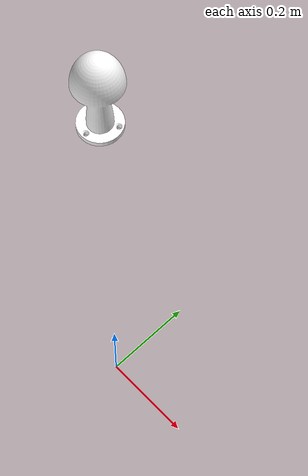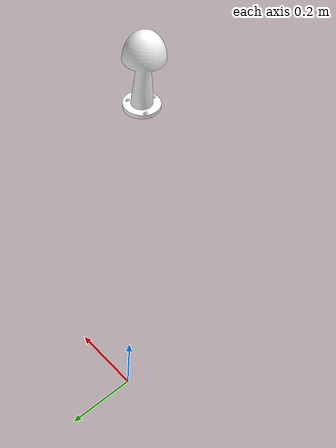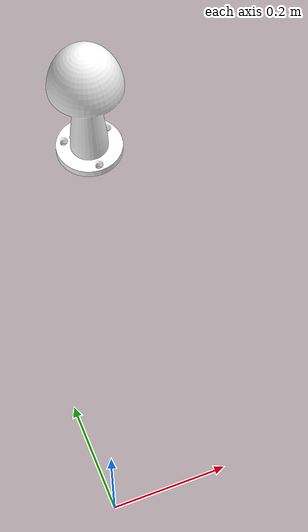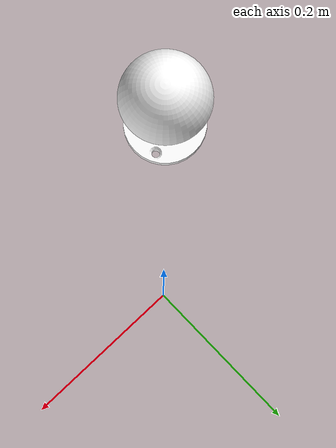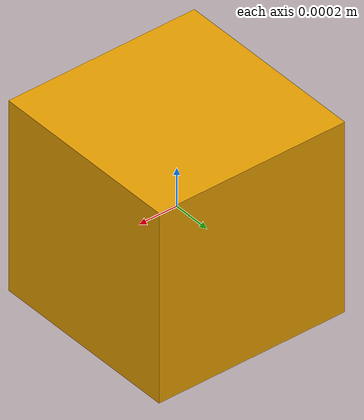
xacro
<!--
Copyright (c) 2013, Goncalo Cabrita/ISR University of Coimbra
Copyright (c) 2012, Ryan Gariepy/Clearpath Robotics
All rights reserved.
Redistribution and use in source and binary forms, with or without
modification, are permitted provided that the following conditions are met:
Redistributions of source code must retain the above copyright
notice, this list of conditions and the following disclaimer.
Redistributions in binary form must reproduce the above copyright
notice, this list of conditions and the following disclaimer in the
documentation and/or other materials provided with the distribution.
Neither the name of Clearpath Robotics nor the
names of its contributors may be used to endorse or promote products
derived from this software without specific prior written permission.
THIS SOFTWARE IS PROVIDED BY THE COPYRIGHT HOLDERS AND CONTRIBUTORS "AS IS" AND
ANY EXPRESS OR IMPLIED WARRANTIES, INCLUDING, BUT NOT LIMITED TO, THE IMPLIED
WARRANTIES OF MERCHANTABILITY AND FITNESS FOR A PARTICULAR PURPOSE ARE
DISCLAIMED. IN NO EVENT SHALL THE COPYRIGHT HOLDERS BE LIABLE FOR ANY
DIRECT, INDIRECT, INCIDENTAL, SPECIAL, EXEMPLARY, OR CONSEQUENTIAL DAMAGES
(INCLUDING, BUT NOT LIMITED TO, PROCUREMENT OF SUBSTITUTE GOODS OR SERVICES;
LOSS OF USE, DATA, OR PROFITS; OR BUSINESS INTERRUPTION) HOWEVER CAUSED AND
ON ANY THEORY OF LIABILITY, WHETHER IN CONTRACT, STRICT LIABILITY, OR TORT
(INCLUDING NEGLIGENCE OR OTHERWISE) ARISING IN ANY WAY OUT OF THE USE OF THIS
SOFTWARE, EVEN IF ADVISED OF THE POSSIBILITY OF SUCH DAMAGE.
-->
<?xml version="1.0"?>

<robot

    xmlns:xi="http://www.w3.org/2001/XInclude"
    xmlns:gazebo="http://playerstage.sourceforge.net/gazebo/xmlschema/#gz"
    xmlns:model="http://playerstage.sourceforge.net/gazebo/xmlschema/#model"
    xmlns:sensor="http://playerstage.sourceforge.net/gazebo/xmlschema/#sensor"
    xmlns:body="http://playerstage.sourceforge.net/gazebo/xmlschema/#body"
    xmlns:geom="http://playerstage.sourceforge.net/gazebo/xmlschema/#geom"
    xmlns:joint="http://playerstage.sourceforge.net/gazebo/xmlschema/#joint"
    xmlns:controller="http://playerstage.sourceforge.net/gazebo/xmlschema/#controller"
    xmlns:interface="http://playerstage.sourceforge.net/gazebo/xmlschema/#interface"
    xmlns:rendering="http://playerstage.sourceforge.net/gazebo/xmlschema/#rendering"
    xmlns:renderable="http://playerstage.sourceforge.net/gazebo/xmlschema/#renderable"
    xmlns:physics="http://playerstage.sourceforge.net/gazebo/xmlschema/#physics"
    xmlns:xacro="http://ros.org/wiki/xacro" name="husky">

    <!-- Included URDF/XACRO Files -->
    <xacro:include filename="$(find hratc2014_framework)/urdf/fsr_husky_parts/gps_antenna.urdf.xacro" />

    <link name="base_footprint">

        <visual>
            <origin xyz="0 0 0" rpy="0 0 0" />
            <geometry>
                <box size="0.001 0.001 0.001" />
            </geometry>
        </visual>
    </link>

    <link name="gps_antenna1">
    			<inertial>
      				<origin xyz="0.035 1.27350000005198E-07 0.084899" rpy="0 0 0" />
      				<mass value="0.28321" />
      				<inertia
        				ixx="0.000632544028273332"
        				ixy="-4.4923388876054E-20"
        				ixz="1.07422508310795E-20"
        				iyy="1.26609361466704E-09"
        				iyz="-0.000632544028277925"
        				izz="-1.26609361462022E-09" />
    			</inertial>
    			<visual>
      				<origin xyz="-0.035 0 0" rpy="1.5708 0 0" />
      				<geometry>
					<mesh filename="package://hratc2014_framework/models/fsr_husky_parts/gps_antenna.stl" />
      				</geometry>
      				<material name="White">
        				<color rgba="1 1 1 1"/>
      				</material>
    			</visual>
    			<collision>
      				<origin xyz="-0.035 0 0" rpy="1.5708 0 0" />
      				<geometry>
					<mesh filename="package://hratc2014_framework/models/fsr_husky_parts/gps_antenna.stl" />
     			 	</geometry>
    			</collision>
  		</link>

		<joint name="gps_antenna_joint1" type="fixed">
			<parent link="base_footprint"/>
			<child link="gps_antenna1"/>
			<origin xyz="0.0 0.0 1" rpy="0 0 0" />
		</joint>

		<gazebo reference="gps_antenna1">
        		<material>Gazebo/White</material>
        		<turnGravityOff>true</turnGravityOff>
		</gazebo>

		<gazebo>
			<plugin name="gazebo_ros_gps" filename="libhector_gazebo_ros_gps.so">
			  <updateRate>4.0</updateRate>
			  <bodyName>gps_antenna1</bodyName>
			  <topicName>/gps1/fix</topicName>
			  <velocityTopicName>/gps1/fix_velocity</velocityTopicName>
			  <offset>0 0 0</offset>
			  <drift>0 0 0</drift>
			  <gaussianNoise>0 0 0</gaussianNoise>
			</plugin>
    		</gazebo>

</robot>
